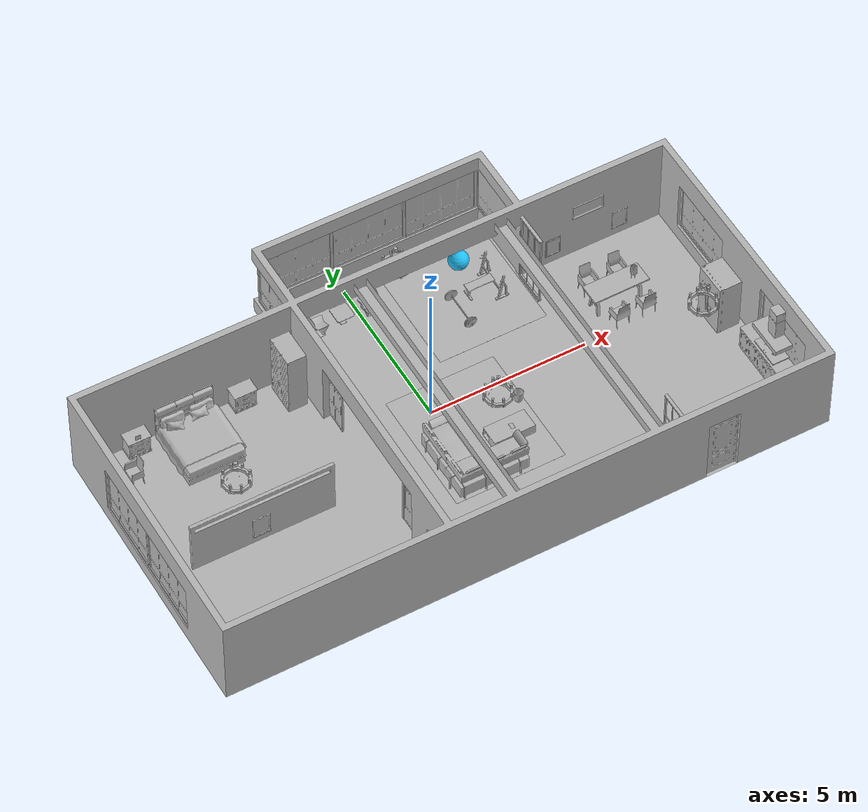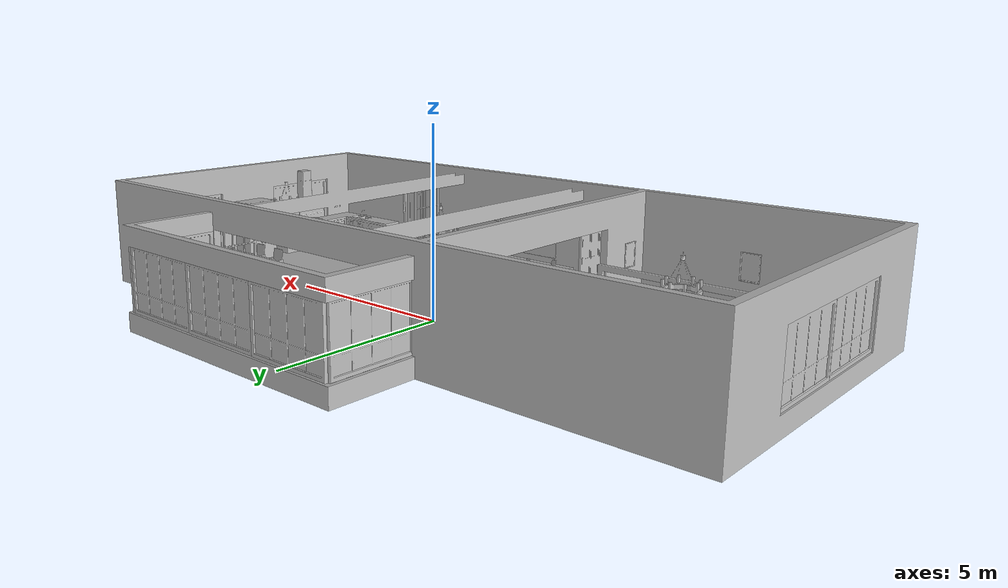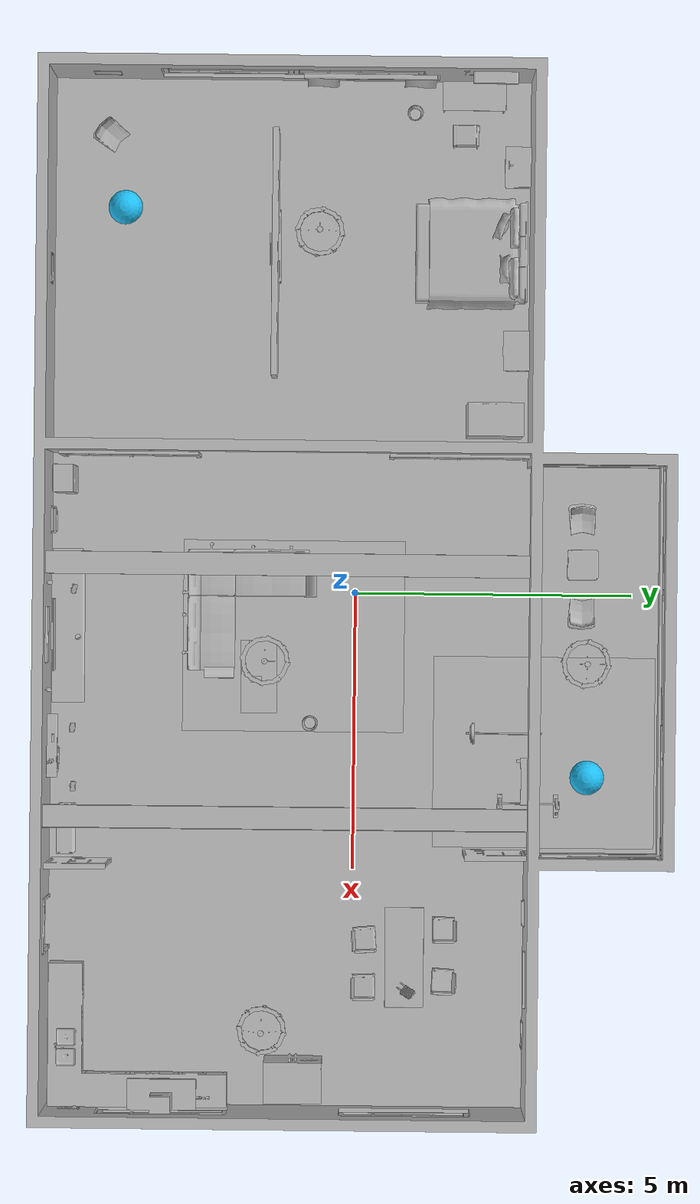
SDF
<?xml version='1.0' encoding='UTF-8'?>
<sdf version="1.6">
    <world name="default">

        <!-- override the default position of the camera !-->
        <gui>
            <camera name="gzclient_camera">
                <pose>0.679719 -0.230569 22.016933 0.000403 1.569797 1.568392</pose>
            </camera>
        </gui>

        <gravity>0 0 -9.8</gravity>
        <magnetic_field>6e-06 2.3e-05 -4.2e-05</magnetic_field>
        <atmosphere type="adiabatic"/>
        <physics name="default_physics" default="0" type="ode">
            <max_step_size>0.001</max_step_size>
            <real_time_factor>1</real_time_factor>
            <real_time_update_rate>1000</real_time_update_rate>
        </physics>
        <scene>
            <ambient>0.4 0.4 0.4 1</ambient>
            <background>0.7 0.7 0.7 1</background>
            <shadows>false</shadows>
            <grid>false</grid>
            <origin_visual>false</origin_visual>
        </scene>
        <spherical_coordinates>
            <surface_model>EARTH_WGS84</surface_model>
            <latitude_deg>0</latitude_deg>
            <longitude_deg>0</longitude_deg>
            <elevation>0</elevation>
            <heading_deg>0</heading_deg>
        </spherical_coordinates>

        <model name="AirconditionerA_01_001">
            <static>true</static>
            <include>
                <uri>model://aws_robomaker_residential_AirconditionerA_01</uri>
            </include>
            <pose frame="">-9.199410 2.411230 2.084544 0 -0 0</pose>
        </model>

        <model name="AirconditionerB_01_001">
            <static>true</static>
            <include>
                <uri>model://aws_robomaker_residential_AirconditionerB_01</uri>
            </include>
            <pose frame="">-2.004656 -5.226610 0.003485 0 -0 0</pose>
        </model>
        <model name="Ball_01_001">
            <static>true</static>
            <include>
                <uri>model://aws_robomaker_residential_Ball_01</uri>
            </include>
            <pose frame="">3.295503 4.225674 0.318684 0 -0 0</pose>
        </model>

        <!-- quick test ball for turtlebot3 -->

        <!-- bedroom ball -->
        <model name="Ball_01_003">
            <static>true</static>
            <include>
                <uri>model://aws_robomaker_residential_Ball_01</uri>
            </include>
            <pose frame="">-6.945503 -4.22174 0.318684 0 -0 0</pose>
        </model>
        <model name="Bed_01_001">
            <static>true</static>
            <include>
                <uri>model://aws_robomaker_residential_Bed_01</uri>
            </include>
            <pose frame="">-6.165067 2.030560 -0.000010 0 -0 0</pose>
        </model>
        <model name="NightStand_01_001">
            <static>true</static>
            <include>
                <uri>model://aws_robomaker_residential_NightStand_01</uri>
            </include>
            <pose frame="">-7.725510 2.860420 0.005258 -0.000002 0 0</pose>
        </model>
        <model name="NightStand_01_002">
            <static>true</static>
            <include>
                <uri>model://aws_robomaker_residential_NightStand_01</uri>
            </include>
            <pose frame="">-4.407341 2.860420 0.005256 0 0.000002 0</pose>
        </model>
        <model name="Board_01_001">
            <static>true</static>
            <include>
                <uri>model://aws_robomaker_residential_Board_01</uri>
            </include>
            <pose frame="">2.779073 -5.392703 1.538173 0 -0 0</pose>
        </model>

        <model name="ChairA_01_001">
            <static>true</static>
            <include>
                <uri>model://aws_robomaker_residential_ChairA_01</uri>
            </include>
            <pose frame="">7.11516 0.209028 0.024685 1e-06 -0 -1.55607</pose>
        </model>
        <model name="ChairA_01_002">
            <static>true</static>
            <include>
                <uri>model://aws_robomaker_residential_ChairA_01</uri>
            </include>
            <pose frame="">6.25506 0.219468 0.011308 0 0 -1.50414</pose>
        </model>
        <model name="ChairA_01_003">
            <static>true</static>
            <include>
                <uri>model://aws_robomaker_residential_ChairA_01</uri>
            </include>
            <pose frame="">6.06678 1.68075 0.01 0 -0 1.56986</pose>
        </model>
        <model name="ChairA_01_004">
            <static>true</static>
            <include>
                <uri>model://aws_robomaker_residential_ChairA_01</uri>
            </include>
            <pose frame="">7.00277 1.67074 0 0 -0 1.52363</pose>
        </model>
        <model name="ChairA_01_005">
            <static>true</static>
            <include>
                <uri>model://aws_robomaker_residential_ChairA_01</uri>
            </include>
            <pose frame="">-8.270940 1.916650 0.036650 0 -0 0</pose>
        </model>
        <model name="ChairD_01_001">
            <static>true</static>
            <include>
                <uri>model://aws_robomaker_residential_ChairD_01</uri>
            </include>
            <pose frame="">-1.380775 4.104456 0 0 -0 0</pose>
        </model>
        <model name="ChairD_01_002">
            <static>true</static>
            <include>
                <uri>model://aws_robomaker_residential_ChairD_01</uri>
            </include>
            <pose frame="">0.325214 4.104456 0 0 -0 -3.138741</pose>
        </model>
        <model name="ChairD_01_003">
            <static>true</static>
            <include>
                <uri>model://aws_robomaker_residential_ChairD_01</uri>
            </include>
            <pose frame="">-8.270775 -4.504456 0 0 -0 0.869673</pose>
        </model>
        <model name="Chandelier_01_001">
            <static>true</static>
            <include>
                <uri>model://aws_robomaker_residential_Chandelier_01</uri>
            </include>
            <pose frame="">1.221061 4.155740 1.295000 0 -0 0</pose>
        </model>
        <model name="Chandelier_01_002">
            <static>true</static>
            <include>
                <uri>model://aws_robomaker_residential_Chandelier_01</uri>
            </include>
            <pose frame="">-6.451061 -0.692040 1.810000 0 -0 0</pose>
        </model>
        <model name="Chandelier_01_003">
            <static>true</static>
            <include>
                <uri>model://aws_robomaker_residential_Chandelier_01</uri>
            </include>
            <pose frame="">7.824061 -1.59 1.7510000 0 -0 0</pose>
        </model>
        <model name="Chandelier_01_004">
            <static>true</static>
            <include>
                <uri>model://aws_robomaker_residential_Chandelier_01</uri>
            </include>
            <pose frame="">1.221061 -1.592040 1.7873000 0 -0 0</pose>
        </model>
        <model name="Carpet_01_001">
            <static>true</static>
            <include>
                <uri>model://aws_robomaker_residential_Carpet_01</uri>
            </include>
            <pose frame="">0.785050 -1.106647 0.001106 0 -0 0</pose>
        </model>
        <model name="Carpet_01_002">
            <static>true</static>
            <include>
                <uri>model://aws_robomaker_residential_Carpet_01</uri>
            </include>
            <pose frame="">2.854050 3.45 0.000585 0 -0 0</pose>
        </model>
        <model name="SecurityCamera_01_001">
            <static>true</static>
            <include>
                <uri>model://aws_robomaker_residential_SecurityCamera_01</uri>
            </include>
            <pose frame="">0.842134 -4.996294 0.495067 0 -0 -2.841039</pose>
        </model>
        <model name="CoffeeTable_01_001">
            <static>true</static>
            <include>
                <uri>model://aws_robomaker_residential_CoffeeTable_01</uri>
            </include>
            <pose frame="">1.512301 -1.733438 0.041983 0.000000 0.000000 0.01000</pose>
        </model>
        <model name="CookingBench_01_001">
            <include>
                <uri>model://aws_robomaker_residential_CookingBench_01</uri>
            </include>
            <pose frame="">9.038383 -3.351140 0.903610 0 -0 3.137133</pose>
            <static> true </static>
        </model>

        <model name="Curtain_01_001">
            <static>true</static>
            <include>
                <uri>model://aws_robomaker_residential_Curtain_01</uri>
            </include>
            <pose frame="">-9.172642 0.203760 0 0 -0 0</pose>
        </model>

        <model name="KitchenTable_01_001">
            <static>true</static>
            <include>
                <uri>model://aws_robomaker_residential_KitchenTable_01</uri>
            </include>
            <pose frame="">6.55269 0.951173 -0.000006 0 -0 -1.564130</pose>
        </model>
        <model name="ReadingDesk_01_001">
            <static>true</static>
            <include>
                <uri>model://aws_robomaker_residential_ReadingDesk_01</uri>
            </include>
            <pose frame="">-8.987262 2.057058 0 0 -0 -0.004638</pose>
        </model>
        <model name="BalconyTable_01_001">
            <static>true</static>
            <include>
                <uri>model://aws_robomaker_residential_BalconyTable_01</uri>
            </include>
            <pose frame="">-0.556240 4.111241 0 0 -0 0</pose>
        </model>

        <model name="Door_01_001">
            <static>true</static>
            <include>
                <uri>model://aws_robomaker_residential_Door_01</uri>
            </include>
            <pose frame="">6.001449 -5.549002 0 0 -0 0</pose>
        </model>

        <model name="Dumbbell_01_001">
            <static>true</static>
            <include>
                <uri>model://aws_robomaker_residential_Dumbbell_01</uri>
            </include>
            <pose frame="">2.512849 2.717787 0.002183 0 -0 0</pose>
        </model>
        <model name="Tablet_01_001">
            <static>true</static>
            <include>
                <uri>model://aws_robomaker_residential_Tablet_01</uri>
            </include>
            <pose frame="">1.572830 -1.775857 0.401790 -0.020625 -0.000080 -0.006317</pose>
        </model>
        <model name="FitnessEquipment_01_001">
            <static>true</static>
            <include>
                <uri>model://aws_robomaker_residential_FitnessEquipment_01</uri>
            </include>
            <pose frame="">3.484720 3.169104 0.003168 0 -0 0</pose>
        </model>
        <model name="FoldingDoor_01_001">
            <static>true</static>
            <include>
                <uri>model://aws_robomaker_residential_FoldingDoor_01</uri>
            </include>
            <pose frame="">-2.461096 1.844219 0.041881 0 -0 0</pose>
        </model>
        <model name="FoldingDoor_01_002">
            <static>true</static>
            <include>
                <uri>model://aws_robomaker_residential_FoldingDoor_01</uri>
            </include>
            <pose frame="">-2.461096 -4.053320 0.041881 0 -0 0</pose>
        </model>
        <model name="Handle_01_001">
            <static>true</static>
            <include>
                <uri>model://aws_robomaker_residential_Handle_01</uri>
            </include>
            <pose frame="">5.724 -5.523 0.9938 0 -0 -3.1415</pose>
        </model>

        <model name="HouseWallB_01_001">
            <static>true</static>
            <include>
                <uri>model://aws_robomaker_residential_HouseWallB_01</uri>
            </include>
            <pose frame="">0 0 0 0 -0 0</pose>
        </model>

        <model name="FloorB_01_001">
            <static>true</static>
            <include>
                <uri>model://aws_robomaker_residential_FloorB_01</uri>
            </include>
            <pose frame="">0 0 0 0 -0 0</pose>
        </model>

        <model name="FoldingDoor_02_001">
            <static>true</static>
            <include>
                <uri>model://aws_robomaker_residential_FoldingDoor_02</uri>
            </include>
            <pose frame="">4.674231 2.46451 0 0 -0 3.14159</pose>
        </model>

        <model name="FoldingDoor_02_002">
            <static>true</static>
            <include>
                <uri>model://aws_robomaker_residential_FoldingDoor_02</uri>
            </include>
            <pose frame="">4.8912 -4.84968 0 0 -0 0</pose>
        </model>

        <model name="KitchenCabinet_01_001">
            <static>true</static>
            <include>
                <uri>model://aws_robomaker_residential_KitchenCabinet_01</uri>
            </include>
            <pose frame="">8.002009 -3.836509 0.012068 0 -0 -3.140001</pose>
        </model>
        <model name="KitchenUtensils_01_001">
            <static>true</static>
            <include>
                <uri>model://aws_robomaker_residential_KitchenUtensils_01</uri>
            </include>
            <pose frame="">9.285478 -5.021261 1.141805 0 -0 0</pose>
        </model>

        <model name="LightC_01_001">
            <static>true</static>
            <include>
                <uri>model://aws_robomaker_residential_LightC_01</uri>
            </include>
            <pose frame="">1.769567 -5.4443710 2.000000 0 -0 0</pose>
        </model>
        <model name="LightC_01_002">
            <static>true</static>
            <include>
                <uri>model://aws_robomaker_residential_LightC_01</uri>
            </include>
            <pose frame="">-0.138245 -5.4443710 2.000000 0 -0 0</pose>
        </model>

        <!-- WALL -->
        <model name="PortraitA_01">
            <static>true</static>
            <include>
                <uri>model://aws_robomaker_residential_PortraitA_01</uri>
            </include>
            <pose frame="">-2.712360 -4.817539 1.00000 0 -0 1.566796</pose>
        </model>

        <model name="PortraitB_01">
            <static>true</static>
            <include>
                <uri>model://aws_robomaker_residential_PortraitB_01</uri>
            </include>
            <pose frame="">-1.279683 -5.429630 0.0 -0.076901 0 -3.116718</pose>
        </model>

        <model name="PortraitB_02">
            <static>true</static>
            <include>
                <uri>model://aws_robomaker_residential_PortraitB_02</uri>
            </include>
            <pose frame="">5.737017 3.080310 0.300000 0 -0 0</pose>
        </model>

        <model name="PortraitB_03">
            <static>true</static>
            <include>
                <uri>model://aws_robomaker_residential_PortraitB_03</uri>
            </include>
            <pose frame="">3.071380 -5.349366 0.005494 -0.168428 0.0 3.104232</pose>
        </model>

        <model name="PortraitA_02">
            <static>true</static>
            <include>
                <uri>model://aws_robomaker_residential_PortraitA_02</uri>
            </include>
            <pose frame="">7.937017 3.080310 0.300000 0 -0 3.14</pose>
        </model>

        <model name="PortraitC_01">
            <static>true</static>
            <include>
                <uri>model://aws_robomaker_residential_PortraitC_01</uri>
            </include>
            <pose frame="">-9.294904 -4.526084 1.000000 0 -0 1.554734</pose>
        </model>

        <model name="PortraitD_01">
            <static>true</static>
            <include>
                <uri>model://aws_robomaker_residential_PortraitD_01</uri>
            </include>
            <pose frame="">0.789763 -5.478725 1.800000 0 -0 3.138531</pose>
        </model>
        <model name="PortraitD_02">
            <static>true</static>
            <include>
                <uri>model://aws_robomaker_residential_PortraitD_02</uri>
            </include>
            <pose frame="">6.870181 3.080310 1.488439 0 -0 0</pose>
        </model>

        <model name="PortraitE_01">
            <static>true</static>
            <include>
                <uri>model://aws_robomaker_residential_PortraitE_01</uri>
            </include>
            <pose frame="">-5.773094 -5.492466 1.000000 0 -0 3.132627</pose>
        </model>
        <model name="PortraitE_02">
            <static>true</static>
            <include>
                <uri>model://aws_robomaker_residential_PortraitE_02</uri>
            </include>
            <pose frame="">-6.193025 -1.590208 0.3 0 -0 0.004290</pose>
        </model>

        <!-- DESK -->
        <model name="DeskPortraitA_01">
            <static>true</static>
            <include>
                <uri>model://aws_robomaker_residential_DeskPortraitA_01</uri>
            </include>
            <pose frame="">-0.036864 -5.110156 0.498660 0 -0 2.927784</pose>
        </model>
        <model name="DeskPortraitA_02">
            <static>true</static>
            <include>
                <uri>model://aws_robomaker_residential_DeskPortraitA_02</uri>
            </include>

            <pose frame="">2.046082 -1.892926 0.0703880 -0.018328 -0.000441 1.576216</pose>
        </model>
        <model name="DeskPortraitC_01">
            <static>true</static>
            <include>
                <uri>model://aws_robomaker_residential_DeskPortraitC_01</uri>
            </include>
            <pose frame="">-7.746377 2.731075 0.694620 0.000488 -0.000359 -0.055499</pose>
        </model>
        <model name="DeskPortraitC_02">
            <static>true</static>
            <include>
                <uri>model://aws_robomaker_residential_DeskPortraitC_02</uri>
            </include>
            <pose frame="">0.964613 -1.586951 0.127676 0.001614 -0.000545 -1.578699</pose>
        </model>
        <model name="DeskPortraitD_01">
            <static>true</static>
            <include>
                <uri>model://aws_robomaker_residential_DeskPortraitD_01</uri>
            </include>
            <pose frame="">2.645560 -5.376225 1.573738 0 -0 -3.112826</pose>
        </model>
        <model name="DeskPortraitD_02">
            <static>true</static>
            <include>
                <uri>model://aws_robomaker_residential_DeskPortraitD_02</uri>
            </include>
            <pose frame="">-0.589211 -5.109890 0.192145 -0.000015 -0.000174 -3.112544</pose>
        </model>
        <model name="DeskPortraitD_03">
            <static>true</static>
            <include>
                <uri>model://aws_robomaker_residential_DeskPortraitD_03</uri>
            </include>
            <pose frame="">1.826729 -1.464881 0.126208 0.000010 0.000006 -3.114380</pose>
        </model>
        <model name="DeskPortraitD_04">
            <static>true</static>
            <include>
                <uri>model://aws_robomaker_residential_DeskPortraitD_04</uri>
            </include>
            <pose frame="">4.302132 -5.176568 0.202496 0.007118 -0.000001 3.046683</pose>
        </model>
        <model name="DeskPortraitB_01">
            <static>true</static>
            <include>
                <uri>model://aws_robomaker_residential_DeskPortraitB_01</uri>
            </include>
            <pose frame="">3.547376 -5.083898 -0.012660 -0.336622 -0.000001 3.046741</pose>
        </model>
        <model name="DeskPortraitB_02">
            <static>true</static>
            <include>
                <uri>model://aws_robomaker_residential_DeskPortraitB_02</uri>
            </include>
            <pose frame="">2.486270 -5.102525 -0.012660 -0.336621 0.000000 3.046798</pose>
        </model>
        <!-- Wall & Desk Portraits END -->

        <model name="Rangehood_01_001">
            <static>true</static>
            <include>
                <uri>model://aws_robomaker_residential_Rangehood_01</uri>
            </include>
            <pose frame="">9.019794 -3.369940 1.507605 0 -0 0</pose>
        </model>

        <model name="Refrigerator_01_001">
            <static>true</static>
            <include>
                <uri>model://aws_robomaker_residential_Refrigerator_01</uri>
            </include>
            <pose frame="">8.702731 -1.032031 0 0 -0 -1.563499</pose>
        </model>
        <model name="SeasoningBox_01_001">
            <static>true</static>
            <include>
                <uri>model://aws_robomaker_residential_SeasoningBox_01</uri>
            </include>
            <pose frame="">9.107968 -2.651726 0.902458 -0.000006 0.000034 0.001290</pose>
        </model>
        <model name="ShoeRack_01_001">
            <static>true</static>
            <include>
                <uri>model://aws_robomaker_residential_ShoeRack_01</uri>
            </include>
            <pose frame="">4.297978 -5.173566 0 0 -0 0</pose>
        </model>
        <model name="SofaC_01_001">
            <static>true</static>
            <include>
                <uri>model://aws_robomaker_residential_SofaC_01</uri>
            </include>
            <pose frame="">0.330699 -1.902792 0.065992 0.000000 0.000000 1.571733</pose>
        </model>
        <model name="Tableware_01_001">
            <static>true</static>
            <include>
                <uri>model://aws_robomaker_residential_Tableware_01</uri>
            </include>
            <pose frame="">7.15317 0.982767 0.817812 -0.001238 -0.000976 1.02476</pose>
        </model>
        <model name="Trash_01_001">
            <static>true</static>
            <include>
                <uri>model://aws_robomaker_residential_Trash_01</uri>
            </include>
            <pose frame="">2.360151 -0.796238 0.011 0 -0 0</pose>
        </model>
        <model name="Trash_01_002">
            <static>true</static>
            <include>
                <uri>model://aws_robomaker_residential_Trash_01</uri>
            </include>
            <pose frame="">-8.704151 1.00058 0.011 0 -0 0</pose>
        </model>
        <model name="TV_01_001">
            <static>true</static>
            <include>
                <uri>model://aws_robomaker_residential_TV_01</uri>
            </include>
            <pose frame="">0.824259 -5.382968 0.676282 0 -0 -1.561744</pose>
        </model>
        <model name="TV_02_001">
            <static>true</static>
            <include>
                <uri>model://aws_robomaker_residential_TV_02</uri>
            </include>
            <pose frame="">-6.197322 -1.388739 0.676282 0 -0 -1.561744</pose>
        </model>
        <model name="TVCabinet_01_001">
            <static>true</static>
            <include>
                <uri>model://aws_robomaker_residential_TVCabinet_01</uri>
            </include>
            <pose frame="">0.629509 -5.183576 -0.017049 0 -0 1.5792</pose>
        </model>
        <model name="Vase_01_001">
            <static>true</static>
            <include>
                <uri>model://aws_robomaker_residential_Vase_01</uri>
            </include>
            <pose frame="">3.055663 -5.413080 1.574958 0.000003 0.001700 0.000840</pose>
        </model>`
        <model name="RoomWall_01_001">
            <static>true</static>
            <include>
                <uri>model://aws_robomaker_residential_RoomWall_01</uri>
            </include>
            <pose frame="">-6.097550 -1.496180 0.028124 0 -0 0</pose>
        </model>

        <model name="Wardrobe_01_001">
            <static>true</static>
            <include>
                <uri>model://aws_robomaker_residential_Wardrobe_01</uri>
            </include>
            <pose frame="">-3.146710 2.476204 0.000704 0 -0 -1.569673</pose>
        </model>
        <model name="RoomWindow_01_001">
            <static>true</static>
            <include>
                <uri>model://aws_robomaker_residential_RoomWindow_01</uri>
            </include>
            <pose frame="">-9.418600 -0.026285 0.502739 0 -0 0</pose>
        </model>
        <model name="RoomWindow_01_002">
            <static>true</static>
            <include>
                <uri>model://aws_robomaker_residential_RoomWindow_01</uri>
            </include>
            <pose frame="">-9.418600 -2.374090 0.502739 0 -0 0</pose>
        </model>
        <model name="RoomWindow_01_003">
            <static>true</static>
            <include>
                <uri>model://aws_robomaker_residential_RoomWindow_01</uri>
            </include>
            <pose frame="">9.422616 -3.373981 0.502739 0 -0 -3.136099</pose>
        </model>
        <model name="RoomWindow_01_004">
            <static>true</static>
            <include>
                <uri>model://aws_robomaker_residential_RoomWindow_01</uri>
            </include>
            <pose frame="">9.422558 0.968520 0.496581 0 -0 -3.136099</pose>
        </model>
        <model name="RoomWindow_01_005">
            <static>true</static>
            <include>
                <uri>model://aws_robomaker_residential_RoomWindow_01</uri>
            </include>
            <pose frame="">4.722317 4.470281 0.502739 0 -0 -3.136099</pose>
        </model>
        <model name="RoomWindow_01_006">
            <static>true</static>
            <include>
                <uri>model://aws_robomaker_residential_RoomWindow_01</uri>
            </include>
            <pose frame="">3.488520 5.600688 0.502739 0 -0 -1.566274</pose>
        </model>
        <model name="RoomWindow_01_007">
            <static>true</static>
            <include>
                <uri>model://aws_robomaker_residential_RoomWindow_01</uri>
            </include>
            <pose frame="">1.140949 5.600688 0.502739 0 -0 -1.566274</pose>
        </model>
        <model name="RoomWindow_01_008">
            <static>true</static>
            <include>
                <uri>model://aws_robomaker_residential_RoomWindow_01</uri>
            </include>
            <pose frame="">-1.199340 5.600688 0.502739 0 -0 -1.566274</pose>
        </model>
        <model name="RoomWindow_01_009">
            <static>true</static>
            <include>
                <uri>model://aws_robomaker_residential_RoomWindow_01</uri>
            </include>
            <pose frame="">-2.396624 4.387607 0.502739 0 -0 0</pose>
        </model>

        <!-- Lights !-->
        <light name="LivingRoom_CeilingLight_0" type="point">
            <pose frame="">1.194296 4.155759 2.2 0 -0 0</pose>
            <diffuse>0.5 0.5 0.5 1</diffuse>
            <specular>0.1 0.1 0.1 1</specular>
            <attenuation>
                <range>20</range>
                <constant>0.32</constant>
                <linear>0.01</linear>
                <quadratic>0.03</quadratic>
            </attenuation>
            <cast_shadows>0</cast_shadows>
            <direction>0 0 -1</direction>
        </light>
        <light name="LivingRoom_CeilingLight_1" type="point">
            <pose frame="">1.194296 -1.589959 2.2 0 -0 0</pose>
            <diffuse>0.5 0.5 0.5 1</diffuse>
            <specular>0.1 0.1 0.1 1</specular>
            <attenuation>
                <range>20</range>
                <constant>0.05</constant>
                <linear>0.01</linear>
                <quadratic>0.09</quadratic>
            </attenuation>
            <cast_shadows>0</cast_shadows>
            <direction>0 0 -1</direction>
        </light>
        <light name="LivingRoom_WallLight_0" type="point">
            <pose frame="">1.76956 -5.444370 2.2 0 -0 0</pose>
            <diffuse>0.24 0.24 0.24 1</diffuse>
            <specular>0.1 0.1 0.1 1</specular>
            <attenuation>
                <range>20</range>
                <constant>0.12</constant>
                <linear>0.00</linear>
                <quadratic>0.03</quadratic>
            </attenuation>
            <cast_shadows>1</cast_shadows>
            <direction>0 0 -1</direction>
        </light>
        <light name="LivingRoom_WallLight_1" type="point">
            <pose frame="">-0.13826 -5.444370 2.2 0 -0 0</pose>
            <diffuse>0.24 0.24 0.24 1</diffuse>
            <specular>0.1 0.1 0.1 1</specular>
            <attenuation>
                <range>20</range>
                <constant>0.12</constant>
                <linear>0.00</linear>
                <quadratic>0.03</quadratic>
            </attenuation>
            <cast_shadows>1</cast_shadows>
            <direction>0 0 -1</direction>
        </light>
        <light name="TV_Light_0" type="point">
            <pose frame="">0.8269 -4.939577 1.1 0 -0 0</pose>
            <diffuse>0.31372 0.31372 0.34901 1</diffuse>
            <specular>0.1 0.1 0.1 1</specular>
            <attenuation>
                <range>3</range>
                <constant>0.10</constant>
                <linear>0.04</linear>
                <quadratic>0.50</quadratic>
            </attenuation>
            <cast_shadows>1</cast_shadows>
            <direction>0 0 -1</direction>
        </light>
        <light name="BedRoom_Portrait_Light_0" type="spot">
            <pose frame="">-6.190379 -1.829697 1.5587 0.3 -0 0.0</pose>
            <diffuse>0.5 0.5 0.5 1</diffuse>
            <specular>0.1 0.1 0.1 1</specular>
            <attenuation>
                <range>20</range>
                <constant>0.50</constant>
                <linear>0.01</linear>
                <quadratic>0.00</quadratic>
            </attenuation>
            <spot>
                <inner_angle>0.6</inner_angle>
                <outer_angle>1.0</outer_angle>
                <falloff>1.0</falloff>
            </spot>
            <cast_shadows>1</cast_shadows>
            <direction>0 0 -1</direction>
        </light>
        <light name="BedRoom_CeilingLight_0" type="point">
            <pose frame="">-6.451061 -0.692040 2.000000 0 -0 0</pose>
            <diffuse>0.5 0.5 0.5 1</diffuse>
            <specular>0.1 0.1 0.1 1</specular>
            <attenuation>
                <range>20</range>
                <constant>0.32</constant>
                <linear>0.01</linear>
                <quadratic>0.03</quadratic>
            </attenuation>
            <cast_shadows>0</cast_shadows>
            <direction>0 0 -1</direction>
        </light>
        <light name="Kitchen_CeilingLight_0" type="point">
            <pose frame="">7.8582 -1.5905 2.280000 0 -0 0</pose>
            <diffuse>0.5 0.5 0.5 1</diffuse>
            <specular>0.1 0.1 0.1 1</specular>
            <attenuation>
                <range>20</range>
                <constant>0.3</constant>
                <linear>0.01</linear>
                <quadratic>0.01</quadratic>
            </attenuation>
            <cast_shadows>0</cast_shadows>
            <direction>0 0 -1</direction>
        </light>
    </world>
</sdf>

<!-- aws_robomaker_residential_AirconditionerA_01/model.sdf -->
<sdf version="1.6">
  <model name="aws_robomaker_residential_AirconditionerA_01">
    <link name="link">
      <inertial>
        <mass>1</mass>
      </inertial>
      <collision name="collision">
        <geometry>
          <mesh>
            <uri>model://aws_robomaker_residential_AirconditionerA_01/meshes/aws_AirconditionerA_01_collision.DAE</uri>
            <scale>1 1 1</scale>
          </mesh>
        </geometry>
      </collision>
      <visual name="visual">
	    <geometry>
          <mesh>
            <uri>model://aws_robomaker_residential_AirconditionerA_01/meshes/aws_AirconditionerA_01_visual.DAE</uri>
          </mesh>
        </geometry>
      <meta> <layer> 1 </layer></meta>
</visual>
    </link>
	<static>1</static>
  </model>
</sdf>

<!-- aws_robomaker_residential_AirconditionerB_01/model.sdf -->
<sdf version="1.6">
  <model name="aws_robomaker_residential_AirconditionerB_01">
    <link name="link">
      <inertial>
        <mass>1</mass>
      </inertial>
      <collision name="collision">
        <geometry>
          <mesh>
            <uri>model://aws_robomaker_residential_AirconditionerB_01/meshes/aws_AirconditionerB_01_collision.DAE</uri>
            <scale>1 1 1</scale>
          </mesh>
        </geometry>
      </collision>
      <visual name="visual">
	    <geometry>
          <mesh>
            <uri>model://aws_robomaker_residential_AirconditionerB_01/meshes/aws_AirconditionerB_01_visual.DAE</uri>
          </mesh>
        </geometry>
      <meta> <layer> 1 </layer></meta>
</visual>
    </link>
  </model>
</sdf>

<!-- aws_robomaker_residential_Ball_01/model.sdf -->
<sdf version="1.6">
  <model name="aws_robomaker_residential_Ball_01">
    <link name="link">
      <inertial>
        <mass>0.12</mass>
        <!-- 2r = 62cm -->
          <inertia>
            <ixx>0.030752</ixx>
            <ixy>0</ixy>
            <ixz>0</ixz>
            <iyy>0.030752</iyy>
            <iyz>0</iyz>
            <izz>0.030752</izz>
          </inertia>
      </inertial>
      <collision name="collision">

        <geometry>
          <sphere>
            <radius>0.31 </radius>
          </sphere>

        </geometry>

        <surface>
          <friction>
            <ode>
              <mu>0.85</mu>
              <mu2>0.85</mu2>
            </ode>
          </friction>

        <!-- Add some bounciness to the ball -->
          <contact>
            <ode>
              <kd>8500</kd>
              <max_vel>5.1</max_vel>
            </ode>
          </contact>
        </surface>

      </collision>
      <visual name="visual">
	    <geometry>
          <sphere>
            <radius>0.31 </radius>
          </sphere>
      </geometry>
          <material>
            <diffuse>0.12 0.76 0.97 1</diffuse>
            <ambient>0.03 0.21 0.27 1</ambient>
          </material>
      <meta> <layer> 1 </layer></meta>
</visual>
    </link>
  </model>
</sdf>

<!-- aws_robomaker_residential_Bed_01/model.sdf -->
<sdf version="1.6">
  <model name="aws_robomaker_residential_Bed_01">
    <link name="link">
      <inertial>
        <mass>22.6</mass>
      </inertial>
      <collision name="collision">
        <geometry>
          <mesh>
            <uri>model://aws_robomaker_residential_Bed_01/meshes/aws_Bed_01_collision.DAE</uri>
            <scale>1 1 1</scale>
          </mesh>
        </geometry>
      </collision>
      <visual name="visual">
	    <geometry>
          <mesh>
            <uri>model://aws_robomaker_residential_Bed_01/meshes/aws_Bed_01_visual.DAE</uri>
          </mesh>
        </geometry>
      <meta> <layer> 1 </layer></meta>
</visual>
    </link>
  <static>1</static>
  </model>
</sdf>

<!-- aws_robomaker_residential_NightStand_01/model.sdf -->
<sdf version="1.6">
  <model name="aws_robomaker_residential_NightStand_01">
    <link name="link">
      <inertial>
        <mass>13.6</mass>

        <inertia>
          <ixx>0.6165</ixx>
          <ixy>0</ixy>
          <ixz>0</ixz>
          <iyy>1.29664</iyy>
          <iyz>0</iyz>
          <izz>0.7706</izz>
        </inertia>

      </inertial>
      <collision name="collision">
        <geometry>
          <mesh>
            <uri>model://aws_robomaker_residential_NightStand_01/meshes/aws_NightStand_01_collision.DAE</uri>
            <scale>1 1 1</scale>
          </mesh>
        </geometry>
      </collision>
      <visual name="visual">
	    <geometry>
          <mesh>
            <uri>model://aws_robomaker_residential_NightStand_01/meshes/aws_NightStand_01_visual.DAE</uri>
          </mesh>
        </geometry>
      <meta> <layer> 1 </layer></meta>
</visual>
    </link>
    <static>1</static>
  </model>
</sdf>

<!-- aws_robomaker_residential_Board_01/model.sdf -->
<sdf version="1.6">
  <model name="aws_robomaker_residential_Board_01">
    <link name="link">
      <inertial>
        <mass>1</mass>
      </inertial>
      <collision name="collision">
        <geometry>
          <mesh>
            <uri>model://aws_robomaker_residential_Board_01/meshes/aws_Board_01_collision.DAE</uri>
            <scale>1 1 1</scale>
          </mesh>
        </geometry>
      </collision>
      <visual name="visual">
	    <geometry>
          <mesh>
            <uri>model://aws_robomaker_residential_Board_01/meshes/aws_Board_01_visual.DAE</uri>
          </mesh>
        </geometry>
      <meta> <layer> 2 </layer></meta>
</visual>
    </link>

    <static>1</static>
  </model>
</sdf>

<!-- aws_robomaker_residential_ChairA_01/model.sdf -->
<sdf version="1.6">
  <model name="aws_robomaker_residential_ChairA_01">
    <link name="link">
      <inertial>
          <mass>7.5</mass>
          <inertia>
            <ixy>0</ixy>
            <ixz>0</ixz>
            <iyz>0</iyz>
            <ixx>0.217</ixx>
            <iyy>0.217</iyy>
            <izz>0.067</izz>
          </inertia>
      </inertial>

      <collision name="collision">
        <geometry>
          <mesh>
            <uri>model://aws_robomaker_residential_ChairA_01/meshes/aws_ChairA_01_collision.DAE</uri>
            <scale>1 1 1</scale>
          </mesh>
        </geometry>
      </collision>
      <visual name="visual">
	    <geometry>
          <mesh>
            <uri>model://aws_robomaker_residential_ChairA_01/meshes/aws_ChairA_01_visual.DAE</uri>
          </mesh>
        </geometry>
      <meta> <layer> 1 </layer></meta>
</visual>
    </link>
  </model>
</sdf>

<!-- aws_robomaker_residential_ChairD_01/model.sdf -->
<sdf version="1.6">
  <model name="aws_robomaker_residential_ChairD_01">
    <link name="link">

      <inertial>
        <mass>4.5</mass>
          <inertia>
            <ixy>0</ixy>
            <ixz>0</ixz>
            <iyz>0</iyz>
            <ixx>0.217</ixx>
            <iyy>0.217</iyy>
            <izz>0.067</izz>
          </inertia>
      </inertial>

      <collision name="collision">

        <geometry>
          <mesh>
            <uri>model://aws_robomaker_residential_ChairD_01/meshes/aws_ChairD_01_collision.DAE</uri>
            <scale>1 1 1</scale>
          </mesh>
        </geometry>

      </collision>
      <visual name="visual">
	    <geometry>
          <mesh>
            <uri>model://aws_robomaker_residential_ChairD_01/meshes/aws_ChairD_01_visual.DAE</uri>
          </mesh>
        </geometry>
      <meta> <layer> 1 </layer></meta>
</visual>
    </link>
  </model>
</sdf>

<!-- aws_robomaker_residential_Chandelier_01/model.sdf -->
<sdf version="1.6">
  <model name="aws_robomaker_residential_Chandelier_01">
    <link name="link">
      <inertial>
        <mass>1</mass>
      </inertial>
      <collision name="collision">
        <geometry>
          <mesh>
            <uri>model://aws_robomaker_residential_Chandelier_01/meshes/aws_Chandelier_01_collision.DAE</uri>
            <scale>1 1 1</scale>
          </mesh>
        </geometry>
      </collision>
      <visual name="visual">
	    <geometry>
          <mesh>
            <uri>model://aws_robomaker_residential_Chandelier_01/meshes/aws_Chandelier_01_visual.DAE</uri>
          </mesh>
        </geometry>
      <meta> <layer> 2 </layer></meta>
</visual>
    </link>
	<static>1</static>
  </model>
</sdf>

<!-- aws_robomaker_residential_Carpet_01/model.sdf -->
<sdf version="1.6">
  <model name="aws_robomaker_residential_Carpet_01">
    <link name="link">
      <inertial>
        <mass>8.1</mass>
      </inertial>

      <collision name="collision">

        <geometry>
          <mesh>
            <uri>model://aws_robomaker_residential_Carpet_01/meshes/aws_Carpet_01_collision.DAE</uri>
            <scale>1 1 0.95</scale>
          </mesh>
        </geometry>

        <surface>
          <friction>
            <ode>
              <mu>100</mu>
              <mu2>50</mu2>
            </ode>
          </friction>
          <contact>
            <ode>
            </ode>
          </contact>
        </surface>

        <pose>0 0 -0.01 0 0 0 </pose>
      </collision>

      <visual name="visual">
	    <geometry>
          <mesh>
            <uri>model://aws_robomaker_residential_Carpet_01/meshes/aws_Carpet_01_visual.DAE</uri>
          </mesh>
        </geometry>
      <meta> <layer> 1 </layer></meta>
</visual>
    </link>

    <static>1</static>

  </model>
</sdf>

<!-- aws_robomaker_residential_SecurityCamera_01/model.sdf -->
<sdf version="1.6">
  <model name="aws_robomaker_residential_SecurityCamera_01">
    <link name="link">
      <inertial>
        <mass>1</mass>
        <inertia>
          <ixx>18.2222</ixx>
          <ixy>0</ixy>
          <ixz>0</ixz>
          <iyy>18.2222</iyy>
          <iyz>0</iyz>
          <izz>0.0018767</izz>
        </inertia>
      </inertial>
      <collision name="collision">
        <geometry>
          <mesh>
            <uri>model://aws_robomaker_residential_SecurityCamera_01/meshes/aws_SecurityCamera_01_collision.DAE</uri>
            <scale>1 1 1</scale>
          </mesh>
        </geometry>
      </collision>
      <visual name="visual">
	    <geometry>
          <mesh>
            <uri>model://aws_robomaker_residential_SecurityCamera_01/meshes/aws_SecurityCamera_01_visual.DAE</uri>
          </mesh>
        </geometry>
        <meta>
          <layer>2</layer>
        </meta>
      </visual>
    </link>
  </model>
</sdf>

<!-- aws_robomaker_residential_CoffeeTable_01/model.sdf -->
<sdf version="1.6">
  <model name="aws_robomaker_residential_CoffeeTable_01">
    <link name="link">
      <inertial>
        <mass>21.7</mass>

        <inertia>
          <ixx>0.8137499999999998</ixx>
          <ixy>0</ixy>
          <ixz>0</ixz>
          <iyy>2.76675</iyy>
          <iyz>0</iyz>
          <izz>3.254</izz>
        </inertia>

      </inertial>

      <collision name="collision">
        <geometry>
          <mesh>
            <uri>model://aws_robomaker_residential_CoffeeTable_01/meshes/aws_CoffeeTable_01_collision.DAE</uri>
            <scale>1 1 1</scale>
          </mesh>
        </geometry>

        <surface>
          <contact>
            <ode>
              <max_vel>0.01</max_vel>
            </ode>
          </contact>
         </surface>
      </collision>

      <visual name="visual">
	    <geometry>
          <mesh>
            <uri>model://aws_robomaker_residential_CoffeeTable_01/meshes/aws_CoffeeTable_01_visual.DAE</uri>
          </mesh>
        </geometry>
      <meta> <layer> 1 </layer></meta>
</visual>
    </link>
    <static>1</static>
  </model>
</sdf>

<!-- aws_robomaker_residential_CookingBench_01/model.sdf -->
<sdf version="1.6">
  <model name="aws_robomaker_residential_CookingBench_01">
    <link name="link">
      <inertial>
        <mass>1</mass>
      </inertial>
      <collision name="collision">
        <geometry>
          <mesh>
            <uri>model://aws_robomaker_residential_CookingBench_01/meshes/aws_CookingBench_01_collision.DAE</uri>
            <scale>1 1 1</scale>
          </mesh>
        </geometry>
      </collision>
      <visual name="visual">
	    <geometry>
          <mesh>
            <uri>model://aws_robomaker_residential_CookingBench_01/meshes/aws_CookingBench_01_visual.DAE</uri>
          </mesh>
        </geometry>
      <meta> <layer> 1 </layer></meta>
</visual>
    </link>
  </model>
</sdf>

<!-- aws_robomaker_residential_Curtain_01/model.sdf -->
<sdf version="1.6">
  <model name="aws_robomaker_residential_Curtain_01">
    <link name="link">
      <inertial>
        <mass>1</mass>
      </inertial>
      <collision name="collision">
        <geometry>
          <mesh>
            <uri>model://aws_robomaker_residential_Curtain_01/meshes/aws_Curtain_01_collision.DAE</uri>
            <scale>1 1 1</scale>
          </mesh>
        </geometry>
      </collision>
      <visual name="visual">
	    <geometry>
          <mesh>
            <uri>model://aws_robomaker_residential_Curtain_01/meshes/aws_Curtain_01_visual.DAE</uri>
          </mesh>
        </geometry>
      <meta> <layer> 2 </layer></meta>
</visual>
    </link>
	<static>1</static>
  </model>
</sdf>

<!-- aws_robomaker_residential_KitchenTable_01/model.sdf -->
<sdf version="1.6">
  <model name="aws_robomaker_residential_KitchenTable_01">
    <link name="link">
      <inertial>
        <mass>12.3</mass>
      </inertial>
      <collision name="collision">
        <geometry>
          <mesh>
            <uri>model://aws_robomaker_residential_KitchenTable_01/meshes/aws_KitchenTable_01_collision.DAE</uri>
            <scale>1 1 1</scale>
          </mesh>
        </geometry>
      </collision>
      <visual name="visual">
	    <geometry>
          <mesh>
            <uri>model://aws_robomaker_residential_KitchenTable_01/meshes/aws_KitchenTable_01_visual.DAE</uri>
          </mesh>
        </geometry>
      <meta> <layer> 1 </layer></meta>
</visual>
    </link>
  </model>
</sdf>

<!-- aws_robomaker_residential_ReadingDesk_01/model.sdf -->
<sdf version="1.6">
  <model name="aws_robomaker_residential_ReadingDesk_01">
    <link name="link">
      <inertial>
        <mass>14.6</mass>
          <inertia>
            <ixx>0.78</ixx>
            <ixy>0</ixy>
            <ixz>0</ixz>
            <iyy>0.273</iyy>
            <iyz>0</iyz>
            <izz> 0.57375</izz>
          </inertia>
      </inertial>
      <collision name="collision">
        <geometry>
          <mesh>
            <uri>model://aws_robomaker_residential_ReadingDesk_01/meshes/aws_ReadingDesk_01_collision.DAE</uri>
            <scale>1 1 1</scale>
          </mesh>
        </geometry>
      </collision>
      <visual name="visual">
	    <geometry>
          <mesh>
            <uri>model://aws_robomaker_residential_ReadingDesk_01/meshes/aws_ReadingDesk_01_visual.DAE</uri>
          </mesh>
        </geometry>
      <meta> <layer> 1 </layer></meta>
</visual>
    </link>
  </model>
</sdf>

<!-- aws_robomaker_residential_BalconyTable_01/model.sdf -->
<sdf version="1.6">
  <model name="aws_robomaker_residential_BalconyTable_01">
    <link name="link">
      <inertial>
        <mass>15</mass>
      </inertial>
      <collision name="collision">
        <geometry>
          <mesh>
            <uri>model://aws_robomaker_residential_BalconyTable_01/meshes/aws_BalconyTable_01_collision.DAE</uri>
            <scale>1 1 1</scale>
          </mesh>
        </geometry>
      </collision>
      <visual name="visual">
	    <geometry>
          <mesh>
            <uri>model://aws_robomaker_residential_BalconyTable_01/meshes/aws_BalconyTable_01_visual.DAE</uri>
          </mesh>
        </geometry>
      <meta> <layer> 1 </layer></meta>
</visual>
    </link>
  </model>
</sdf>

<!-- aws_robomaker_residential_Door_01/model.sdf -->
<sdf version="1.6">
  <model name="aws_robomaker_residential_Door_01">
    <link name="link">
      <inertial>
        <mass>1</mass>
      </inertial>
      <collision name="collision">
        <geometry>
          <mesh>
            <uri>model://aws_robomaker_residential_Door_01/meshes/aws_Door_01_collision.DAE</uri>
            <scale>1 1 1</scale>
          </mesh>
        </geometry>
      </collision>
      <visual name="visual">
	    <geometry>
          <mesh>
            <uri>model://aws_robomaker_residential_Door_01/meshes/aws_Door_01_visual.DAE</uri>
          </mesh>
        </geometry>
      <meta> <layer> 2 </layer></meta>
</visual>
    </link>
	<static>1</static>
  </model>
</sdf>

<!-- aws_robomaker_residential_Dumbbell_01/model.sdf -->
<sdf version="1.6">
  <model name="aws_robomaker_residential_Dumbbell_01">
    <link name="link">
      <inertial>
        <mass>80</mass>

        <!-- slender rod -->
        <inertia>
          <ixx>14.601</ixx>
          <ixy>0</ixy>
          <ixz>0</ixz>
          <iyy>0</iyy>
          <iyz>0</iyz>
          <izz>14.601</izz>
        </inertia>
      </inertial>
      <collision name="collision">
        <geometry>
          <mesh>
            <uri>model://aws_robomaker_residential_Dumbbell_01/meshes/aws_Dumbbell_01_collision.DAE</uri>
            <scale>1 1 1</scale>
          </mesh>
        </geometry>
        <max_contacts>10</max_contacts>
          <surface>
            <contact>
              <ode/>
            </contact>
            <bounce/>
            <friction>
              <torsional>
                <ode/>
              </torsional>
              <ode/>
            </friction>
          </surface>
      </collision>
      <visual name="visual">
	    <geometry>
          <mesh>
            <uri>model://aws_robomaker_residential_Dumbbell_01/meshes/aws_Dumbbell_01_visual.DAE</uri>
          </mesh>
        </geometry>
      <meta> <layer> 1 </layer></meta>
</visual>
    </link>
    <static>1</static>
  </model>
</sdf>

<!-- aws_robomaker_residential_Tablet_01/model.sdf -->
<sdf version="1.6">
  <model name="aws_robomaker_residential_Tablet_01">
    <link name="link">
      <inertial>
        <mass>0.5</mass>
        <inertia>
          <ixx>0.035652</ixx>
          <ixy>0</ixy>
          <ixz>0</ixz>
          <iyy>0.01</iyy>
          <iyz>0</iyz>
          <izz>0.04120698</izz>
        </inertia>
      </inertial>
      <collision name="collision">
        <geometry>
          <mesh>
            <uri>model://aws_robomaker_residential_Tablet_01/meshes/aws_Tablet_01_collision.DAE</uri>
            <scale>1 1 1</scale>
          </mesh>
        </geometry>
      </collision>
      <visual name="visual">
	    <geometry>
          <mesh>
            <uri>model://aws_robomaker_residential_Tablet_01/meshes/aws_Tablet_01_visual.DAE</uri>
          </mesh>
        </geometry>
        <meta>
          <layer>2</layer>
        </meta>
      </visual>
    </link>
	<static>1</static>
  </model>
</sdf>

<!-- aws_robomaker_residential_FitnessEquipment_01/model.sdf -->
<sdf version="1.6">
  <model name="aws_robomaker_residential_FitnessEquipment_01">
    <link name="link">
      <inertial>
        <mass>80</mass>
      </inertial>
      <collision name="collision">
        <geometry>
          <mesh>
            <uri>model://aws_robomaker_residential_FitnessEquipment_01/meshes/aws_FitnessEquipment_01_collision.DAE</uri>
            <scale>1 1 1</scale>
          </mesh>
        </geometry>
      </collision>
      <visual name="visual">
	    <geometry>
          <mesh>
            <uri>model://aws_robomaker_residential_FitnessEquipment_01/meshes/aws_FitnessEquipment_01_visual.DAE</uri>
          </mesh>
        </geometry>
      <meta> <layer> 1 </layer></meta>
</visual>
    </link>
  <static>1</static>
  </model>
</sdf>

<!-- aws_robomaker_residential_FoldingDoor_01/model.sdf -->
<sdf version="1.6">
  <model name="aws_robomaker_residential_FoldingDoor_01">
    <link name="link">
      <inertial>
        <mass>1</mass>
      </inertial>
      <collision name="collision">
        <geometry>
          <mesh>
            <uri>model://aws_robomaker_residential_FoldingDoor_01/meshes/aws_FoldingDoor_01_collision.DAE</uri>
            <scale>1 1 1</scale>
          </mesh>
        </geometry>
      </collision>
      <visual name="visual">
	    <geometry>
          <mesh>
            <uri>model://aws_robomaker_residential_FoldingDoor_01/meshes/aws_FoldingDoor_01_visual.DAE</uri>
          </mesh>
        </geometry>
      <meta> <layer> 2 </layer></meta>
</visual>
    </link>
	<static>1</static>
  </model>
</sdf>

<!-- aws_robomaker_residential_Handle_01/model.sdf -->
<sdf version="1.6">
  <model name="aws_robomaker_residential_Handle_01">
    <link name="link">
      <inertial>
        <mass>1</mass>
      </inertial>
      <collision name="collision">
        <geometry>
          <mesh>
            <uri>model://aws_robomaker_residential_Handle_01/meshes/aws_Handle_01_collision.DAE</uri>
            <scale>1 1 1</scale>
          </mesh>
        </geometry>
      </collision>
      <visual name="visual">
	    <geometry>
          <mesh>
            <uri>model://aws_robomaker_residential_Handle_01/meshes/aws_Handle_01_visual.DAE</uri>
          </mesh>
        </geometry>
      <meta> <layer> 2 </layer></meta>
</visual>
    </link>
	<static>1</static>
  </model>
</sdf>

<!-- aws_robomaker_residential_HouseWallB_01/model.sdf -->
<sdf version="1.6">
  <model name="aws_robomaker_residential_HouseWallB_01">
    <link name="link">
      <inertial>
        <mass>1</mass>
      </inertial>
      <collision name="collision">
        <geometry>
          <mesh>
            <uri>model://aws_robomaker_residential_HouseWallB_01/meshes/aws_HouseWallB_01_collision.DAE</uri>
            <scale>1 1 1</scale>
          </mesh>
        </geometry>
      </collision>
      <visual name="visual">
	    <geometry>
          <mesh>
            <uri>model://aws_robomaker_residential_HouseWallB_01/meshes/aws_HouseWallB_01_visual.DAE</uri>
          </mesh>
        </geometry>
      <meta> <layer> 2 </layer></meta>
</visual>
    </link>
<static>1</static>
  </model>
</sdf>

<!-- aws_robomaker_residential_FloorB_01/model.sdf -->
<sdf version="1.6">
  <model name="aws_robomaker_residential_FloorB_01">
    <link name="link">
      <inertial>
        <mass>100</mass>
      </inertial>

      <collision name="collision">
        <geometry>
          <mesh>
            <uri>model://aws_robomaker_residential_FloorB_01/meshes/aws_FloorB_01_collision.DAE</uri>
            <scale>1 1 0.9</scale>
          </mesh>
        </geometry>

        <surface>
          <friction>
            <ode>
              <mu>100</mu>
              <mu2>50</mu2>
            </ode>
          </friction>
        </surface>
      </collision>

      <visual name="visual">
	    <geometry>
          <mesh>
            <uri>model://aws_robomaker_residential_FloorB_01/meshes/aws_FloorB_01_visual.DAE</uri>
          </mesh>
        </geometry>
      <meta> <layer> 1 </layer></meta>
</visual>
    </link>

	<static>1</static>
  </model>
</sdf>

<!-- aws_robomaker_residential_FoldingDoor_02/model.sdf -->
<sdf version="1.6">
  <model name="aws_robomaker_residential_FoldingDoor_02">
    <link name="link">
      <inertial>
        <mass>1</mass>
      </inertial>
      <collision name="collision">
        <geometry>
          <mesh>
            <uri>model://aws_robomaker_residential_FoldingDoor_02/meshes/aws_FoldingDoor_02_collision.DAE</uri>
            <scale>1 1 1</scale>
          </mesh>
        </geometry>
      </collision>
      <visual name="visual">
	    <geometry>
          <mesh>
            <uri>model://aws_robomaker_residential_FoldingDoor_02/meshes/aws_FoldingDoor_02_visual.DAE</uri>
          </mesh>
        </geometry>
      <meta> <layer> 2 </layer></meta>
</visual>
    </link>
<static>1</static>
  </model>
</sdf>

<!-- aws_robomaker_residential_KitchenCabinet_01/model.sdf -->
<sdf version="1.6">
  <model name="aws_robomaker_residential_KitchenCabinet_01">
    <link name="link">
      <inertial>
        <mass>1</mass>
      </inertial>
      <collision name="collision">
        <laser_retro>0</laser_retro>
        <max_contacts>10</max_contacts>
        <geometry>
          <mesh>
            <uri>model://aws_robomaker_residential_KitchenCabinet_01/meshes/aws_KitchenCabinet_01_collision.DAE</uri>
            <scale>1 1 1</scale>
          </mesh>
        </geometry>
      </collision>
      <visual name="visual">
	    <geometry>
          <mesh>
            <uri>model://aws_robomaker_residential_KitchenCabinet_01/meshes/aws_KitchenCabinet_01_visual.DAE</uri>
          </mesh>
        </geometry>
      <meta> <layer> 1 </layer></meta>
</visual>
    </link>

    <static>1</static>
  </model>
</sdf>

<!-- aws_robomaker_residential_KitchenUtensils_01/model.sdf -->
<sdf version="1.6">
  <model name="aws_robomaker_residential_KitchenUtensils_01">
    <link name="link">
      <inertial>
        <mass>1</mass>
      </inertial>
      <collision name="collision">
        <geometry>
          <mesh>
            <uri>model://aws_robomaker_residential_KitchenUtensils_01/meshes/aws_KitchenUtensils_01_collision.DAE</uri>
            <scale>1 1 1</scale>
          </mesh>
        </geometry>
      </collision>
      <visual name="visual">
	    <geometry>
          <mesh>
            <uri>model://aws_robomaker_residential_KitchenUtensils_01/meshes/aws_KitchenUtensils_01_visual.DAE</uri>
          </mesh>
        </geometry>
      <meta> <layer> 1 </layer></meta>
</visual>
    </link>
	<static>1</static>
  </model>
</sdf>

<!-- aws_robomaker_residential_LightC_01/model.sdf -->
<sdf version="1.6">
  <model name="aws_robomaker_residential_LightC_01">
    <link name="link">
      <inertial>
        <mass>1</mass>
      </inertial>
      <collision name="collision">
        <geometry>
          <mesh>
            <uri>model://aws_robomaker_residential_LightC_01/meshes/aws_LightC_01_collision.DAE</uri>
            <scale>1 1 1</scale>
          </mesh>
        </geometry>
      </collision>
      <visual name="visual">
	    <geometry>
          <mesh>
            <uri>model://aws_robomaker_residential_LightC_01/meshes/aws_LightC_01_visual.DAE</uri>
          </mesh>
        </geometry>
      <meta> <layer> 2 </layer></meta>
</visual>
    </link>
	<static>1</static>
  </model>
</sdf>

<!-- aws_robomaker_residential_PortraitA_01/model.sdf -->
<sdf version="1.6">
  <model name="aws_robomaker_residential_PortraitA_01">
    <link name="link">
      <inertial>
        <mass>1</mass>
      </inertial>
      <collision name="collision">
        <geometry>
          <mesh>
            <uri>model://aws_robomaker_residential_PortraitA_01/meshes/aws_PortraitA_01_collision.DAE</uri>
            <scale>1 1 1</scale>
          </mesh>
        </geometry>
      </collision>
      <visual name="visual">
	    <geometry>
          <mesh>
            <uri>model://aws_robomaker_residential_PortraitA_01/meshes/aws_PortraitA_01_visual.DAE</uri>
          </mesh>
        </geometry>
      <meta> <layer> 2 </layer></meta>
</visual>
    </link>
	<static>1</static>
  </model>
</sdf>

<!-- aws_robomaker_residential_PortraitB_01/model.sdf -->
<sdf version="1.6">
  <model name="aws_robomaker_residential_PortraitB_01">
    <link name="link">
      <inertial>
        <mass>1</mass>
      </inertial>
      <collision name="collision">
        <geometry>
          <mesh>
            <uri>model://aws_robomaker_residential_PortraitB_01/meshes/aws_PortraitB_01_collision.DAE</uri>
            <scale>1 1 1</scale>
          </mesh>
        </geometry>
      </collision>
      <visual name="visual">
	    <geometry>
          <mesh>
            <uri>model://aws_robomaker_residential_PortraitB_01/meshes/aws_PortraitB_01_visual.DAE</uri>
          </mesh>
        </geometry>
      <meta> <layer> 2 </layer></meta>
</visual>
    </link>
	<static>1</static>
  </model>
</sdf>

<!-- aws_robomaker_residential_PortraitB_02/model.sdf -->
<sdf version="1.6">
  <model name="aws_robomaker_residential_PortraitB_02">
    <link name="link">
      <inertial>
        <mass>1</mass>
      </inertial>
      <collision name="collision">
        <geometry>
          <mesh>
            <uri>model://aws_robomaker_residential_PortraitB_02/meshes/aws_PortraitB_01_collision.DAE</uri>
            <scale>1 1 1</scale>
          </mesh>
        </geometry>
      </collision>
      <visual name="visual">
	    <geometry>
          <mesh>
            <uri>model://aws_robomaker_residential_PortraitB_02/meshes/aws_PortraitB_01_visual.DAE</uri>
          </mesh>
        </geometry>
      <meta> <layer> 2 </layer></meta>
</visual>
    </link>
	<static>1</static>
  </model>
</sdf>
